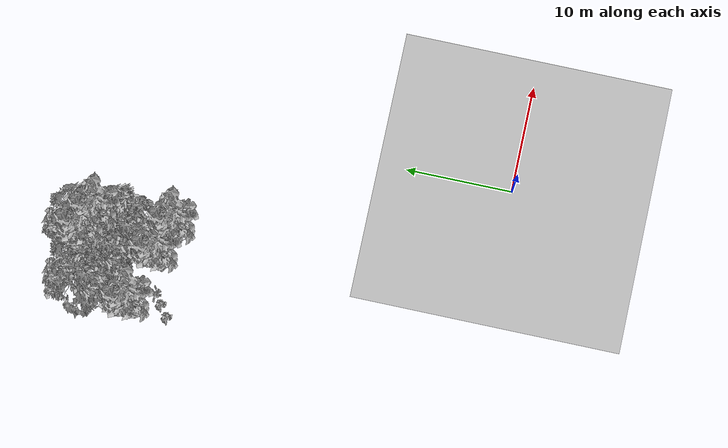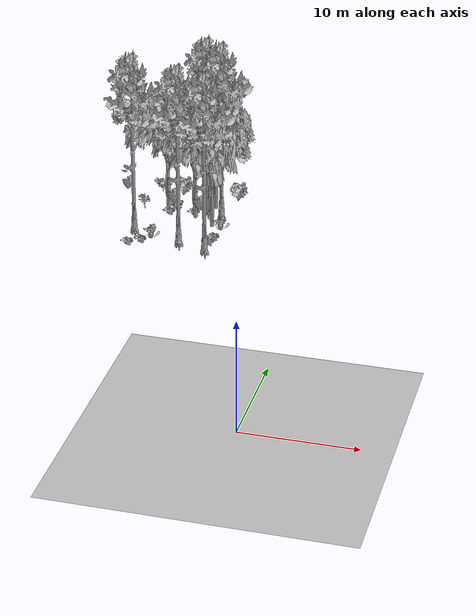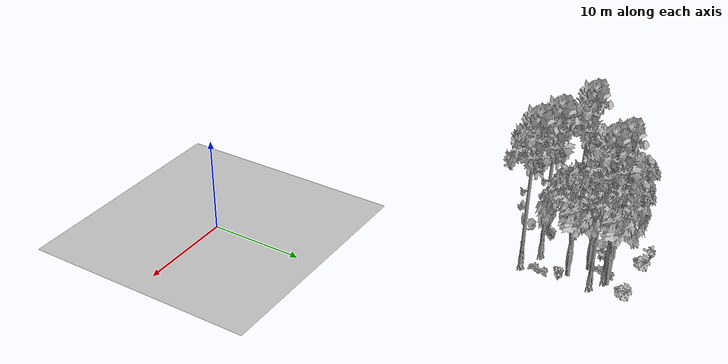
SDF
<sdf version="1.7">
 <world name="default">
  <model name="ground_plane">
   <static>1</static>
   <link name="link">
    <collision name="collision">
     <pose>-50 0 0 0 -0 0</pose>
     <geometry><plane><normal>0 0 1</normal><size>80 80</size></plane></geometry>
     <surface><contact><ode><min_depth>0.01</min_depth><max_vel>0</max_vel></ode></contact></surface>
    </collision>
    <visual name="grass">
     <cast_shadows>0</cast_shadows>
     <geometry>
      <mesh>
       <scale>0.46714285714285714 0.46714285714285714 0.1</scale>
       <uri>file://grass_plane/meshes/grass_plane.dae</uri>
      </mesh>
     </geometry>
    </visual>
   </link>
  </model>
  <model name="Tree 203">
   <static>1</static>
   <pose>-18.305170834290134 31.555473640254675 0 1.57079 -0 0</pose>
   <link name="link">
    <collision name="collision">
     <geometry><mesh><scale>3.5 5 3.5</scale><uri>model://tree_9/meshes/tree_9.obj</uri></mesh></geometry>
    </collision>
    <visual name="visual">
     <geometry><mesh><scale>3.5 5 3.5</scale><uri>model://tree_9/meshes/tree_9.obj</uri></mesh></geometry>
    </visual>
   </link>
  </model>
  <model name="Tree 286">
   <static>1</static>
   <pose>-12.688051729134518 36.96286012461053 0 1.57079 -0 0</pose>
   <link name="link">
    <collision name="collision">
     <geometry><mesh><scale>3.5 5 3.5</scale><uri>model://tree_9/meshes/tree_9.obj</uri></mesh></geometry>
    </collision>
    <visual name="visual">
     <geometry><mesh><scale>3.5 5 3.5</scale><uri>model://tree_9/meshes/tree_9.obj</uri></mesh></geometry>
    </visual>
   </link>
  </model>
  <model name="Tree 337">
   <static>1</static>
   <pose>-10.826718390128573 29.13336163360603 0 1.57079 -0 0</pose>
   <link name="link">
    <collision name="collision">
     <geometry><mesh><scale>3.5 5 3.5</scale><uri>model://tree_9/meshes/tree_9.obj</uri></mesh></geometry>
    </collision>
    <visual name="visual">
     <geometry><mesh><scale>3.5 5 3.5</scale><uri>model://tree_9/meshes/tree_9.obj</uri></mesh></geometry>
    </visual>
   </link>
  </model>
  <model name="Tree 396">
   <static>1</static>
   <pose>-16.50544814754512 36.41283367562417 0 1.57079 -0 0</pose>
   <link name="link">
    <collision name="collision">
     <geometry><mesh><scale>3.5 5 3.5</scale><uri>model://tree_2/meshes/tree_2.obj</uri></mesh></geometry>
    </collision>
    <visual name="visual">
     <geometry><mesh><scale>3.5 5 3.5</scale><uri>model://tree_2/meshes/tree_2.obj</uri></mesh></geometry>
    </visual>
   </link>
  </model>
  <model name="Tree 401">
   <static>1</static>
   <pose>-13.46573954291684 35.082697137088786 0 1.57079 -0 0</pose>
   <link name="link">
    <collision name="collision">
     <geometry><mesh><scale>3.5 5 3.5</scale><uri>model://tree_2/meshes/tree_2.obj</uri></mesh></geometry>
    </collision>
    <visual name="visual">
     <geometry><mesh><scale>3.5 5 3.5</scale><uri>model://tree_2/meshes/tree_2.obj</uri></mesh></geometry>
    </visual>
   </link>
  </model>
  <model name="Tree 414">
   <static>1</static>
   <pose>-12.118411195371912 37.44954028433985 0 1.57079 -0 0</pose>
   <link name="link">
    <collision name="collision">
     <geometry><mesh><scale>3.5 5 3.5</scale><uri>model://tree_2/meshes/tree_2.obj</uri></mesh></geometry>
    </collision>
    <visual name="visual">
     <geometry><mesh><scale>3.5 5 3.5</scale><uri>model://tree_2/meshes/tree_2.obj</uri></mesh></geometry>
    </visual>
   </link>
  </model>
  <model name="Tree 508">
   <static>1</static>
   <pose>-11.105141741964932 36.12492975906268 0 1.57079 -0 0</pose>
   <link name="link">
    <collision name="collision">
     <geometry><mesh><scale>3.5 5 3.5</scale><uri>model://tree_9/meshes/tree_9.obj</uri></mesh></geometry>
    </collision>
    <visual name="visual">
     <geometry><mesh><scale>3.5 5 3.5</scale><uri>model://tree_9/meshes/tree_9.obj</uri></mesh></geometry>
    </visual>
   </link>
  </model>
  <model name="Tree 516">
   <static>1</static>
   <pose>-13.567022113705747 30.07394466990337 0 1.57079 -0 0</pose>
   <link name="link">
    <collision name="collision">
     <geometry><mesh><scale>3.5 5 3.5</scale><uri>model://tree_9/meshes/tree_9.obj</uri></mesh></geometry>
    </collision>
    <visual name="visual">
     <geometry><mesh><scale>3.5 5 3.5</scale><uri>model://tree_9/meshes/tree_9.obj</uri></mesh></geometry>
    </visual>
   </link>
  </model>
  <model name="Tree 527">
   <static>1</static>
   <pose>-11.479937821593008 33.73147342710513 0 1.57079 -0 0</pose>
   <link name="link">
    <collision name="collision">
     <geometry><mesh><scale>3.5 5 3.5</scale><uri>model://tree_2/meshes/tree_2.obj</uri></mesh></geometry>
    </collision>
    <visual name="visual">
     <geometry><mesh><scale>3.5 5 3.5</scale><uri>model://tree_2/meshes/tree_2.obj</uri></mesh></geometry>
    </visual>
   </link>
  </model>
  <model name="Bush 4">
   <static>1</static>
   <pose>-16.13209280574326 35.60983877471088 0 1.57079 -0 0</pose>
   <link name="link">
    <collision name="collision">
     <geometry><mesh><scale>2 2 2</scale><uri>model://bush_2/meshes/bush_2.obj</uri></mesh></geometry>
     <surface><contact><collide_without_contact>false</collide_without_contact></contact></surface>
    </collision>
    <visual name="visual">
     <geometry><mesh><scale>2 2 2</scale><uri>model://bush_2/meshes/bush_2.obj</uri></mesh></geometry>
    </visual>
   </link>
  </model>
  <model name="Bush 102">
   <static>1</static>
   <pose>-10.416504133975344 33.144652916718286 0 1.57079 -0 0</pose>
   <link name="link">
    <collision name="collision">
     <geometry><mesh><scale>2 2 2</scale><uri>model://bush_4/meshes/bush_4.obj</uri></mesh></geometry>
     <surface><contact><collide_without_contact>false</collide_without_contact></contact></surface>
    </collision>
    <visual name="visual">
     <geometry><mesh><scale>2 2 2</scale><uri>model://bush_4/meshes/bush_4.obj</uri></mesh></geometry>
    </visual>
   </link>
  </model>
  <model name="Bush 108">
   <static>1</static>
   <pose>-13.786540497240757 35.936412833067536 0 1.57079 -0 0</pose>
   <link name="link">
    <collision name="collision">
     <geometry><mesh><scale>2 2 2</scale><uri>model://bush_2/meshes/bush_2.obj</uri></mesh></geometry>
     <surface><contact><collide_without_contact>false</collide_without_contact></contact></surface>
    </collision>
    <visual name="visual">
     <geometry><mesh><scale>2 2 2</scale><uri>model://bush_2/meshes/bush_2.obj</uri></mesh></geometry>
    </visual>
   </link>
  </model>
  <model name="Bush 147">
   <static>1</static>
   <pose>-10.651210975718467 31.515473947443155 0 1.57079 -0 0</pose>
   <link name="link">
    <collision name="collision">
     <geometry><mesh><scale>2 2 2</scale><uri>model://bush_2/meshes/bush_2.obj</uri></mesh></geometry>
     <surface><contact><collide_without_contact>false</collide_without_contact></contact></surface>
    </collision>
    <visual name="visual">
     <geometry><mesh><scale>2 2 2</scale><uri>model://bush_2/meshes/bush_2.obj</uri></mesh></geometry>
    </visual>
   </link>
  </model>
  <model name="Bush 148">
   <static>1</static>
   <pose>-16.206225485371476 29.93256817847393 0 1.57079 -0 0</pose>
   <link name="link">
    <collision name="collision">
     <geometry><mesh><scale>2 2 2</scale><uri>model://bush_4/meshes/bush_4.obj</uri></mesh></geometry>
     <surface><contact><collide_without_contact>false</collide_without_contact></contact></surface>
    </collision>
    <visual name="visual">
     <geometry><mesh><scale>2 2 2</scale><uri>model://bush_4/meshes/bush_4.obj</uri></mesh></geometry>
    </visual>
   </link>
  </model>
  <model name="Bush 157">
   <static>1</static>
   <pose>-15.283328688977257 35.58062886690142 0 1.57079 -0 0</pose>
   <link name="link">
    <collision name="collision">
     <geometry><mesh><scale>2 2 2</scale><uri>model://bush_0/meshes/bush_0.obj</uri></mesh></geometry>
     <surface><contact><collide_without_contact>false</collide_without_contact></contact></surface>
    </collision>
    <visual name="visual">
     <geometry><mesh><scale>2 2 2</scale><uri>model://bush_0/meshes/bush_0.obj</uri></mesh></geometry>
    </visual>
   </link>
  </model>
  <model name="Bush 238">
   <static>1</static>
   <pose>-15.791303385721697 39.362154546080035 0 1.57079 -0 0</pose>
   <link name="link">
    <collision name="collision">
     <geometry><mesh><scale>2 2 2</scale><uri>model://bush_1/meshes/bush_1.obj</uri></mesh></geometry>
     <surface><contact><collide_without_contact>false</collide_without_contact></contact></surface>
    </collision>
    <visual name="visual">
     <geometry><mesh><scale>2 2 2</scale><uri>model://bush_1/meshes/bush_1.obj</uri></mesh></geometry>
    </visual>
   </link>
  </model>
  <model name="Bush 268">
   <static>1</static>
   <pose>-17.94939412786444 39.66234021891668 0 1.57079 -0 0</pose>
   <link name="link">
    <collision name="collision">
     <geometry><mesh><scale>2 2 2</scale><uri>model://bush_0/meshes/bush_0.obj</uri></mesh></geometry>
     <surface><contact><collide_without_contact>false</collide_without_contact></contact></surface>
    </collision>
    <visual name="visual">
     <geometry><mesh><scale>2 2 2</scale><uri>model://bush_0/meshes/bush_0.obj</uri></mesh></geometry>
    </visual>
   </link>
  </model>
  <model name="Bush 328">
   <static>1</static>
   <pose>-13.457867839925978 37.16699364029161 0 1.57079 -0 0</pose>
   <link name="link">
    <collision name="collision">
     <geometry><mesh><scale>2 2 2</scale><uri>model://bush_2/meshes/bush_2.obj</uri></mesh></geometry>
     <surface><contact><collide_without_contact>false</collide_without_contact></contact></surface>
    </collision>
    <visual name="visual">
     <geometry><mesh><scale>2 2 2</scale><uri>model://bush_2/meshes/bush_2.obj</uri></mesh></geometry>
    </visual>
   </link>
  </model>
  <model name="Bush 361">
   <static>1</static>
   <pose>-18.534052371417793 35.68757704839885 0 1.57079 -0 0</pose>
   <link name="link">
    <collision name="collision">
     <geometry><mesh><scale>2 2 2</scale><uri>model://bush_5/meshes/bush_5.obj</uri></mesh></geometry>
     <surface><contact><collide_without_contact>false</collide_without_contact></contact></surface>
    </collision>
    <visual name="visual">
     <geometry><mesh><scale>2 2 2</scale><uri>model://bush_5/meshes/bush_5.obj</uri></mesh></geometry>
    </visual>
   </link>
  </model>
  <model name="Bush 399">
   <static>1</static>
   <pose>-17.09144528670324 29.41624704966108 0 1.57079 -0 0</pose>
   <link name="link">
    <collision name="collision">
     <geometry><mesh><scale>2 2 2</scale><uri>model://bush_2/meshes/bush_2.obj</uri></mesh></geometry>
     <surface><contact><collide_without_contact>false</collide_without_contact></contact></surface>
    </collision>
    <visual name="visual">
     <geometry><mesh><scale>2 2 2</scale><uri>model://bush_2/meshes/bush_2.obj</uri></mesh></geometry>
    </visual>
   </link>
  </model>
  <model name="Bush 523">
   <static>1</static>
   <pose>-10.376692880847557 39.45230139564126 0 1.57079 -0 0</pose>
   <link name="link">
    <collision name="collision">
     <geometry><mesh><scale>2 2 2</scale><uri>model://bush_1/meshes/bush_1.obj</uri></mesh></geometry>
     <surface><contact><collide_without_contact>false</collide_without_contact></contact></surface>
    </collision>
    <visual name="visual">
     <geometry><mesh><scale>2 2 2</scale><uri>model://bush_1/meshes/bush_1.obj</uri></mesh></geometry>
    </visual>
   </link>
  </model>
  <model name="Bush 554">
   <static>1</static>
   <pose>-18.12961549292545 28.649007742047814 0 1.57079 -0 0</pose>
   <link name="link">
    <collision name="collision">
     <geometry><mesh><scale>2 2 2</scale><uri>model://bush_2/meshes/bush_2.obj</uri></mesh></geometry>
     <surface><contact><collide_without_contact>false</collide_without_contact></contact></surface>
    </collision>
    <visual name="visual">
     <geometry><mesh><scale>2 2 2</scale><uri>model://bush_2/meshes/bush_2.obj</uri></mesh></geometry>
    </visual>
   </link>
  </model>
  <model name="Bush 638">
   <static>1</static>
   <pose>-10.862814402032775 30.48332543819373 0 1.57079 -0 0</pose>
   <link name="link">
    <collision name="collision">
     <geometry><mesh><scale>2 2 2</scale><uri>model://bush_2/meshes/bush_2.obj</uri></mesh></geometry>
     <surface><contact><collide_without_contact>false</collide_without_contact></contact></surface>
    </collision>
    <visual name="visual">
     <geometry><mesh><scale>2 2 2</scale><uri>model://bush_2/meshes/bush_2.obj</uri></mesh></geometry>
    </visual>
   </link>
  </model>
 </world>
</sdf>
